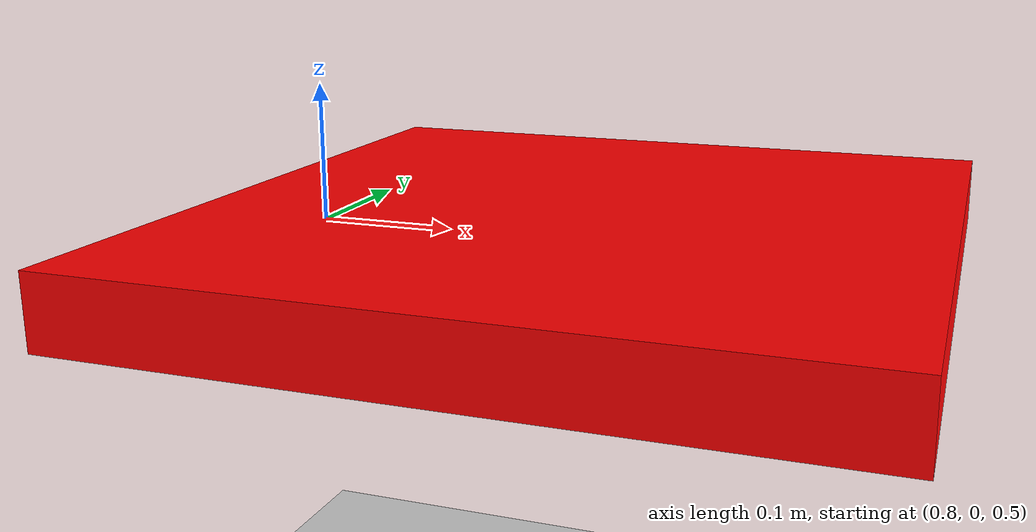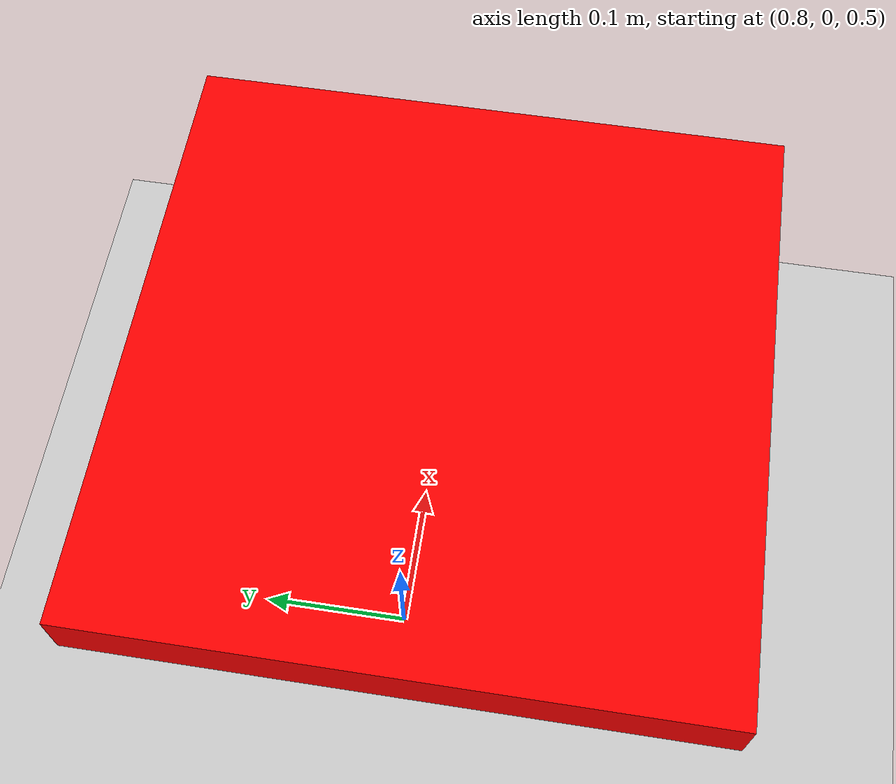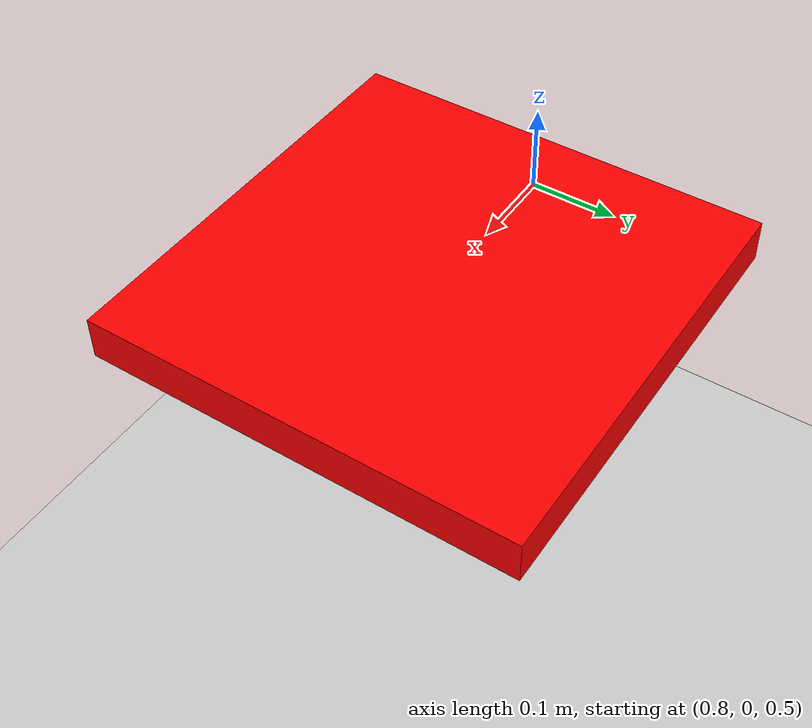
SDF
<sdf version='1.7'>
  <world name='default'>
    <light name='sun' type='directional'>
      <cast_shadows>1</cast_shadows>
      <pose>0 0 10 0 -0 0</pose>
      <diffuse>0.8 0.8 0.8 1</diffuse>
      <specular>0.2 0.2 0.2 1</specular>
      <attenuation>
        <range>1000</range>
        <constant>0.9</constant>
        <linear>0.01</linear>
        <quadratic>0.001</quadratic>
      </attenuation>
      <direction>-0.5 0.1 -0.9</direction>
      <spot>
        <inner_angle>0</inner_angle>
        <outer_angle>0</outer_angle>
        <falloff>0</falloff>
      </spot>
    </light>
    <model name='ground_plane'>
      <static>1</static>
      <link name='link'>
        <collision name='collision'>
          <geometry>
            <plane>
              <normal>0 0 1</normal>
              <size>100 100</size>
            </plane>
          </geometry>
          <surface>
            <contact>
              <collide_bitmask>65535</collide_bitmask>
              <ode/>
            </contact>
            <friction>
              <ode>
                <mu>100</mu>
                <mu2>50</mu2>
              </ode>
              <torsional>
                <ode/>
              </torsional>
            </friction>
            <bounce/>
          </surface>
          <max_contacts>10</max_contacts>
        </collision>
        <visual name='visual'>
          <cast_shadows>0</cast_shadows>
          <geometry>
            <plane>
              <normal>0 0 1</normal>
              <size>100 100</size>
            </plane>
          </geometry>
          <material>
            <script>
              <uri>file://media/materials/scripts/gazebo.material</uri>
              <name>Gazebo/Grey</name>
            </script>
          </material>
        </visual>
        <self_collide>0</self_collide>
        <enable_wind>0</enable_wind>
        <kinematic>0</kinematic>
      </link>
    </model>
    <gravity>0 0 -9.8</gravity>
    <magnetic_field>6e-06 2.3e-05 -4.2e-05</magnetic_field>
    <atmosphere type='adiabatic'/>
    <physics type='ode'>
      <max_step_size>0.001</max_step_size>
      <real_time_factor>1</real_time_factor>
      <real_time_update_rate>1000</real_time_update_rate>
    </physics>
    <scene>
      <ambient>0.4 0.4 0.4 1</ambient>
      <background>0.7 0.7 0.7 1</background>
      <shadows>1</shadows>
    </scene>
    <wind/>
    <spherical_coordinates>
      <surface_model>EARTH_WGS84</surface_model>
      <latitude_deg>0</latitude_deg>
      <longitude_deg>0</longitude_deg>
      <elevation>0</elevation>
      <heading_deg>0</heading_deg>
    </spherical_coordinates>

    <model name='obstacle_1m'>
      <pose>1.0 0.0 0.5 0 -0 0</pose>
      <link name='link'>
        <inertial>
          <mass>1</mass>
          <inertia>
            <ixx>0.166667</ixx>
            <ixy>0</ixy>
            <ixz>0</ixz>
            <iyy>0.166667</iyy>
            <iyz>0</iyz>
            <izz>0.166667</izz>
          </inertia>
          <pose>0 0 0 0 -0 0</pose>
        </inertial>
        <collision name='collision'>
          <geometry>
            <box>
              <size>0.5 0.5 0.05</size>
            </box>
          </geometry>
          <max_contacts>10</max_contacts>
          <surface>
            <contact>
              <ode/>
            </contact>
            <bounce/>
            <friction>
              <torsional>
                <ode/>
              </torsional>
              <ode/>
            </friction>
          </surface>
        </collision>
        <visual name='visual'>
          <geometry>
            <box>
              <size>0.5 0.5 0.05</size>
            </box>
          </geometry>
          <material>
            <ambient>1 0 0 1</ambient> <!-- Red color, fully opaque -->
            <diffuse>1 0 0 1</diffuse>
            <specular>0.1 0.1 0.1 1</specular> <!-- Low specular reflection -->
            <emissive>0 0 0 0</emissive> <!-- No self-illumination -->
          </material>

        </visual>
        <self_collide>0</self_collide>
        <enable_wind>0</enable_wind>
        <kinematic>0</kinematic>
      </link>
    </model>

  </world>
</sdf>
